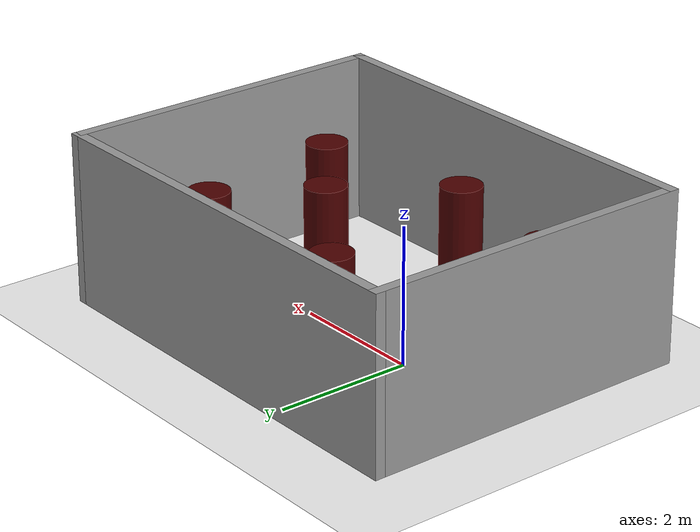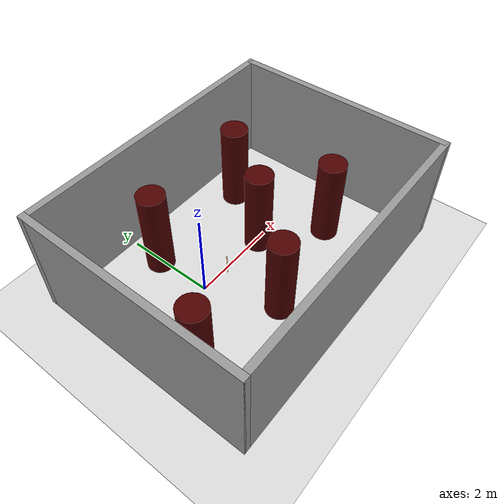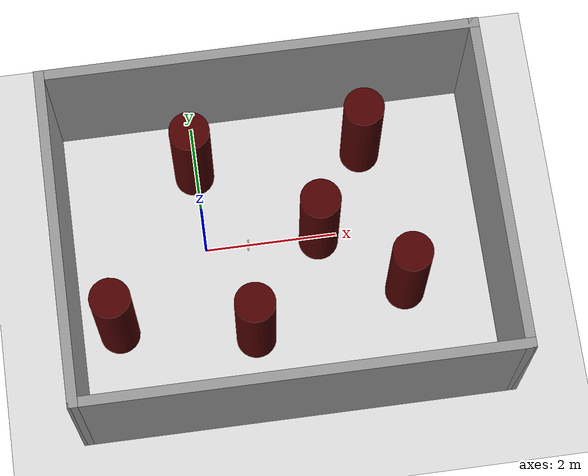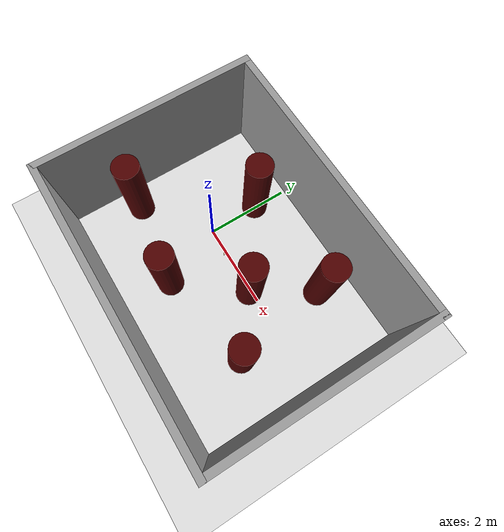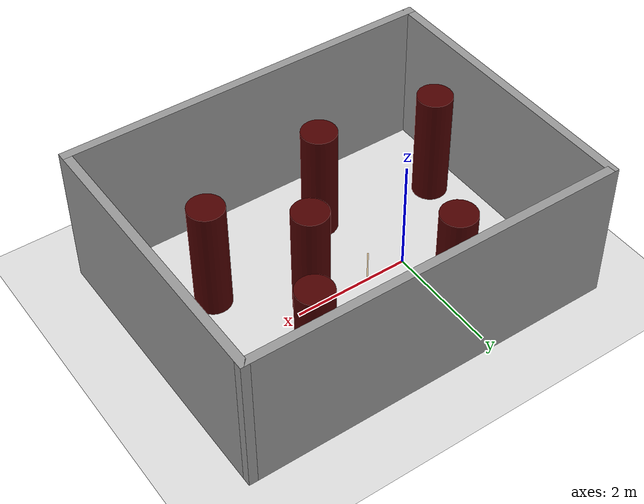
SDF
<sdf version="1.6">
 <world name="default">
  <physics name="default_physics" default="0" type="ode">
   <max_step_size>0.001</max_step_size>
   <real_time_factor>1</real_time_factor>
   <real_time_update_rate>0</real_time_update_rate>
  </physics>
  <light name="sun" type="directional">
   <pose>0 0 10 0 -0 0</pose>
   <diffuse>0.8 0.8 0.8 1</diffuse>
   <specular>0.2 0.2 0.2 1</specular>
   <attenuation>
    <range>1000</range>
    <constant>0.9</constant>
    <linear>0.01</linear>
    <quadratic>0.001</quadratic>
   </attenuation>
   <direction>0.5 0.1 -0.9</direction>
  </light>
  <scene><ambient>0.4 0.4 0.4 1</ambient><background>0.7 0.7 0.7 1</background><shadows>1</shadows></scene>
  <model name="ground_plane_0">
   <static>1</static>
   <link name="link">
    <collision name="collision">
     <geometry><plane><normal>0 0 1</normal><size>100 100</size></plane></geometry>
    </collision>
    <visual name="visual">
     <cast_shadows>0</cast_shadows>
     <geometry><plane><normal>0 0 1</normal><size>100 100</size></plane></geometry>
     <material>
      <script><uri>file://media/materials/scripts/gazebo.material</uri><name>Gazebo/Grey</name></script>
     </material>
    </visual>
    <velocity_decay><linear>0</linear><angular>0</angular></velocity_decay>
   </link>
   <pose>0.497681 0 0 0 -0 0</pose>
  </model>
  <gravity>0 0 -9.8</gravity>
  <magnetic_field>6e-06 2.3e-05 -4.2e-05</magnetic_field>
  <atmosphere type="adiabatic"/>
  <spherical_coordinates>
   <surface_model>EARTH_WGS84</surface_model>
   <latitude_deg>0</latitude_deg>
   <longitude_deg>0</longitude_deg>
   <elevation>0</elevation>
   <heading_deg>0</heading_deg>
  </spherical_coordinates>
  <model name="TargetMark5">
   <link name="link_0">
    <inertial>
     <mass>1</mass>
     <inertia><ixx>0.145833</ixx><ixy>0</ixy><ixz>0</ixz><iyy>0.145833</iyy><iyz>0</iyz><izz>0.125</izz></inertia>
    </inertial>
    <gravity>0</gravity>
    <visual name="visual">
     <geometry><cylinder><radius>0.0105</radius><length>1</length></cylinder></geometry>
     <material>
      <lighting>1</lighting>
      <script><uri>file://media/materials/scripts/gazebo.material</uri><name>Gazebo/Grey</name></script>
      <shader type="pixel"><normal_map>__default__</normal_map></shader>
      <ambient>1 0.6 0 1</ambient>
      <diffuse>1 0.6 0 1</diffuse>
      <specular>1 0.6 0 1</specular>
      <emissive>1 0.6 0 1</emissive>
     </material>
     <transparency>0.6</transparency>
    </visual>
    <collision name="collision">
     <geometry><cylinder><radius>1e-06</radius><length>0.01</length></cylinder></geometry>
     <surface>
      <friction>
       <ode><mu>1</mu><mu2>1</mu2><fdir1>0 0 0</fdir1><slip1>0</slip1><slip2>0</slip2></ode>
       <torsional>
        <coefficient>1</coefficient>
        <patch_radius>0</patch_radius>
        <surface_radius>0</surface_radius>
        <use_patch_radius>1</use_patch_radius>
        <ode><slip>0</slip></ode>
       </torsional>
      </friction>
      <bounce><restitution_coefficient>0</restitution_coefficient><threshold>1e+06</threshold></bounce>
      <contact>
       <collide_without_contact>0</collide_without_contact>
       <collide_without_contact_bitmask>1</collide_without_contact_bitmask>
       <collide_bitmask>1</collide_bitmask>
       <ode>
        <soft_cfm>0</soft_cfm>
        <soft_erp>0.2</soft_erp>
        <kp>1e+13</kp>
        <kd>1</kd>
        <max_vel>0.01</max_vel>
        <min_depth>0</min_depth>
       </ode>
       <bullet>
        <split_impulse>1</split_impulse>
        <split_impulse_penetration_threshold>-0.01</split_impulse_penetration_threshold>
        <soft_cfm>0</soft_cfm>
        <soft_erp>0.2</soft_erp>
        <kp>1e+13</kp>
        <kd>1</kd>
       </bullet>
      </contact>
     </surface>
    </collision>
   </link>
   <static>0</static>
   <pose>0.64544 -0.071407 0 0 -0 0</pose>
  </model>
  <model name="mario_walls">
   <pose>1.09544 -0.271407 0 0 -0 0</pose>
   <link name="Wall_11">
    <collision name="Wall_11_Collision">
     <geometry><box><size>5 0.15 2.5</size></box></geometry>
     <pose>0 0 1.25 0 -0 0</pose>
    </collision>
    <visual name="Wall_11_Visual">
     <pose>0 0 1.25 0 -0 0</pose>
     <geometry><box><size>5 0.15 2.5</size></box></geometry>
     <material>
      <script><uri>file://media/materials/scripts/gazebo.material</uri><name>Gazebo/Grey</name></script>
      <ambient>1 1 1 1</ambient>
     </material>
    </visual>
    <pose>-3.175 0 0 0 0 -1.5708</pose>
   </link>
   <link name="Wall_12">
    <collision name="Wall_12_Collision">
     <geometry><box><size>6.5 0.15 2.5</size></box></geometry>
     <pose>0 0 1.25 0 -0 0</pose>
    </collision>
    <visual name="Wall_12_Visual">
     <pose>0 0 1.25 0 -0 0</pose>
     <geometry><box><size>6.5 0.15 2.5</size></box></geometry>
     <material>
      <script><uri>file://media/materials/scripts/gazebo.material</uri><name>Gazebo/Grey</name></script>
      <ambient>1 1 1 1</ambient>
     </material>
    </visual>
    <pose>0 -2.425 0 0 -0 0</pose>
   </link>
   <link name="Wall_13">
    <collision name="Wall_13_Collision">
     <geometry><box><size>5 0.15 2.5</size></box></geometry>
     <pose>0 0 1.25 0 -0 0</pose>
    </collision>
    <visual name="Wall_13_Visual">
     <pose>0 0 1.25 0 -0 0</pose>
     <geometry><box><size>5 0.15 2.5</size></box></geometry>
     <material>
      <script><uri>file://media/materials/scripts/gazebo.material</uri><name>Gazebo/Grey</name></script>
      <ambient>1 1 1 1</ambient>
     </material>
    </visual>
    <pose>3.175 0 0 0 -0 1.5708</pose>
   </link>
   <link name="Wall_14">
    <collision name="Wall_14_Collision">
     <geometry><box><size>6.5 0.15 2.5</size></box></geometry>
     <pose>0 0 1.25 0 -0 0</pose>
    </collision>
    <visual name="Wall_14_Visual">
     <pose>0 0 1.25 0 -0 0</pose>
     <geometry><box><size>6.5 0.15 2.5</size></box></geometry>
     <material>
      <script><uri>file://media/materials/scripts/gazebo.material</uri><name>Gazebo/Grey</name></script>
      <ambient>1 1 1 1</ambient>
     </material>
    </visual>
    <pose>0 2.425 0 0 -0 3.14159</pose>
   </link>
   <static>1</static>
  </model>
  <model name="unit_cylinder_0_mario_2_0">
   <link name="link">
    <inertial>
     <mass>300</mass>
     <inertia><ixx>0.145833</ixx><ixy>0</ixy><ixz>0</ixz><iyy>0.145833</iyy><iyz>0</iyz><izz>0.125</izz></inertia>
    </inertial>
    <visual name="visual">
     <geometry><cylinder><radius>0.3</radius><length>2</length></cylinder></geometry>
     <material>
      <script><name>Gazebo/Grey</name><uri>file://media/materials/scripts/gazebo.material</uri></script>
      <ambient>0.3 0 0 1</ambient>
      <diffuse>0.7 0.7 0.7 1</diffuse>
      <specular>0.01 0.01 0.01 1</specular>
      <emissive>0 0 0 1</emissive>
      <shader type="vertex"><normal_map>__default__</normal_map></shader>
     </material>
    </visual>
    <collision name="collision">
     <geometry><cylinder><radius>0.3</radius><length>2</length></cylinder></geometry>
     <surface>
      <friction>
       <ode><mu>1</mu><mu2>1</mu2><fdir1>0 0 0</fdir1><slip1>0</slip1><slip2>0</slip2></ode>
       <torsional>
        <coefficient>1</coefficient>
        <patch_radius>0</patch_radius>
        <surface_radius>0</surface_radius>
        <use_patch_radius>1</use_patch_radius>
        <ode><slip>0</slip></ode>
       </torsional>
      </friction>
      <bounce><restitution_coefficient>0</restitution_coefficient><threshold>1e+06</threshold></bounce>
      <contact>
       <collide_without_contact>0</collide_without_contact>
       <collide_without_contact_bitmask>1</collide_without_contact_bitmask>
       <collide_bitmask>1</collide_bitmask>
       <ode>
        <soft_cfm>0</soft_cfm>
        <soft_erp>0.2</soft_erp>
        <kp>1e+13</kp>
        <kd>1</kd>
        <max_vel>0.01</max_vel>
        <min_depth>0</min_depth>
       </ode>
       <bullet>
        <split_impulse>1</split_impulse>
        <split_impulse_penetration_threshold>-0.01</split_impulse_penetration_threshold>
        <soft_cfm>0</soft_cfm>
        <soft_erp>0.2</soft_erp>
        <kp>1e+13</kp>
        <kd>1</kd>
       </bullet>
      </contact>
     </surface>
    </collision>
   </link>
   <static>0</static>
   <pose>1.72484 -0.06409 0.999999 1e-05 1.4e-05 -0.012077</pose>
  </model>
  <model name="unit_cylinder_0_mario_2_0_clone">
   <link name="link">
    <inertial>
     <mass>300</mass>
     <inertia><ixx>0.145833</ixx><ixy>0</ixy><ixz>0</ixz><iyy>0.145833</iyy><iyz>0</iyz><izz>0.125</izz></inertia>
    </inertial>
    <visual name="visual">
     <geometry><cylinder><radius>0.3</radius><length>2</length></cylinder></geometry>
     <material>
      <script><name>Gazebo/Grey</name><uri>file://media/materials/scripts/gazebo.material</uri></script>
      <ambient>0.3 0 0 1</ambient>
      <diffuse>0.7 0.7 0.7 1</diffuse>
      <specular>0.01 0.01 0.01 1</specular>
      <emissive>0 0 0 1</emissive>
      <shader type="vertex"><normal_map>__default__</normal_map></shader>
     </material>
    </visual>
    <collision name="collision">
     <geometry><cylinder><radius>0.3</radius><length>2</length></cylinder></geometry>
     <surface>
      <friction>
       <ode><mu>1</mu><mu2>1</mu2><fdir1>0 0 0</fdir1><slip1>0</slip1><slip2>0</slip2></ode>
       <torsional>
        <coefficient>1</coefficient>
        <patch_radius>0</patch_radius>
        <surface_radius>0</surface_radius>
        <use_patch_radius>1</use_patch_radius>
        <ode><slip>0</slip></ode>
       </torsional>
      </friction>
      <bounce><restitution_coefficient>0</restitution_coefficient><threshold>1e+06</threshold></bounce>
      <contact>
       <collide_without_contact>0</collide_without_contact>
       <collide_without_contact_bitmask>1</collide_without_contact_bitmask>
       <collide_bitmask>1</collide_bitmask>
       <ode>
        <soft_cfm>0</soft_cfm>
        <soft_erp>0.2</soft_erp>
        <kp>1e+13</kp>
        <kd>1</kd>
        <max_vel>0.01</max_vel>
        <min_depth>0</min_depth>
       </ode>
       <bullet>
        <split_impulse>1</split_impulse>
        <split_impulse_penetration_threshold>-0.01</split_impulse_penetration_threshold>
        <soft_cfm>0</soft_cfm>
        <soft_erp>0.2</soft_erp>
        <kp>1e+13</kp>
        <kd>1</kd>
       </bullet>
      </contact>
     </surface>
    </collision>
   </link>
   <static>0</static>
   <pose>0.58802 -1.47747 0.999999 1e-05 1.4e-05 -0.012077</pose>
  </model>
  <model name="unit_cylinder_0_mario_2_0_clone_0">
   <link name="link">
    <inertial>
     <mass>300</mass>
     <inertia><ixx>0.145833</ixx><ixy>0</ixy><ixz>0</ixz><iyy>0.145833</iyy><iyz>0</iyz><izz>0.125</izz></inertia>
    </inertial>
    <visual name="visual">
     <geometry><cylinder><radius>0.3</radius><length>2</length></cylinder></geometry>
     <material>
      <script><name>Gazebo/Grey</name><uri>file://media/materials/scripts/gazebo.material</uri></script>
      <ambient>0.3 0 0 1</ambient>
      <diffuse>0.7 0.7 0.7 1</diffuse>
      <specular>0.01 0.01 0.01 1</specular>
      <emissive>0 0 0 1</emissive>
      <shader type="vertex"><normal_map>__default__</normal_map></shader>
     </material>
    </visual>
    <collision name="collision">
     <geometry><cylinder><radius>0.3</radius><length>2</length></cylinder></geometry>
     <surface>
      <friction>
       <ode><mu>1</mu><mu2>1</mu2><fdir1>0 0 0</fdir1><slip1>0</slip1><slip2>0</slip2></ode>
       <torsional>
        <coefficient>1</coefficient>
        <patch_radius>0</patch_radius>
        <surface_radius>0</surface_radius>
        <use_patch_radius>1</use_patch_radius>
        <ode><slip>0</slip></ode>
       </torsional>
      </friction>
      <bounce><restitution_coefficient>0</restitution_coefficient><threshold>1e+06</threshold></bounce>
      <contact>
       <collide_without_contact>0</collide_without_contact>
       <collide_without_contact_bitmask>1</collide_without_contact_bitmask>
       <collide_bitmask>1</collide_bitmask>
       <ode>
        <soft_cfm>0</soft_cfm>
        <soft_erp>0.2</soft_erp>
        <kp>1e+13</kp>
        <kd>1</kd>
        <max_vel>0.01</max_vel>
        <min_depth>0</min_depth>
       </ode>
       <bullet>
        <split_impulse>1</split_impulse>
        <split_impulse_penetration_threshold>-0.01</split_impulse_penetration_threshold>
        <soft_cfm>0</soft_cfm>
        <soft_erp>0.2</soft_erp>
        <kp>1e+13</kp>
        <kd>1</kd>
       </bullet>
      </contact>
     </surface>
    </collision>
   </link>
   <static>0</static>
   <pose>2.92102 -1.02492 0.999999 1e-05 1.4e-05 -0.012077</pose>
  </model>
  <model name="unit_cylinder_0_mario_2_0_clone_1">
   <link name="link">
    <inertial>
     <mass>300</mass>
     <inertia><ixx>0.145833</ixx><ixy>0</ixy><ixz>0</ixz><iyy>0.145833</iyy><iyz>0</iyz><izz>0.125</izz></inertia>
    </inertial>
    <visual name="visual">
     <geometry><cylinder><radius>0.3</radius><length>2</length></cylinder></geometry>
     <material>
      <script><name>Gazebo/Grey</name><uri>file://media/materials/scripts/gazebo.material</uri></script>
      <ambient>0.3 0 0 1</ambient>
      <diffuse>0.7 0.7 0.7 1</diffuse>
      <specular>0.01 0.01 0.01 1</specular>
      <emissive>0 0 0 1</emissive>
      <shader type="vertex"><normal_map>__default__</normal_map></shader>
     </material>
    </visual>
    <collision name="collision">
     <geometry><cylinder><radius>0.3</radius><length>2</length></cylinder></geometry>
     <surface>
      <friction>
       <ode><mu>1</mu><mu2>1</mu2><fdir1>0 0 0</fdir1><slip1>0</slip1><slip2>0</slip2></ode>
       <torsional>
        <coefficient>1</coefficient>
        <patch_radius>0</patch_radius>
        <surface_radius>0</surface_radius>
        <use_patch_radius>1</use_patch_radius>
        <ode><slip>0</slip></ode>
       </torsional>
      </friction>
      <bounce><restitution_coefficient>0</restitution_coefficient><threshold>1e+06</threshold></bounce>
      <contact>
       <collide_without_contact>0</collide_without_contact>
       <collide_without_contact_bitmask>1</collide_without_contact_bitmask>
       <collide_bitmask>1</collide_bitmask>
       <ode>
        <soft_cfm>0</soft_cfm>
        <soft_erp>0.2</soft_erp>
        <kp>1e+13</kp>
        <kd>1</kd>
        <max_vel>0.01</max_vel>
        <min_depth>0</min_depth>
       </ode>
       <bullet>
        <split_impulse>1</split_impulse>
        <split_impulse_penetration_threshold>-0.01</split_impulse_penetration_threshold>
        <soft_cfm>0</soft_cfm>
        <soft_erp>0.2</soft_erp>
        <kp>1e+13</kp>
        <kd>1</kd>
       </bullet>
      </contact>
     </surface>
    </collision>
   </link>
   <static>0</static>
   <pose>2.55106 1.25811 0.999999 1e-05 1.4e-05 -0.012077</pose>
  </model>
  <model name="unit_cylinder_0_mario_2_0_clone_2">
   <link name="link">
    <inertial>
     <mass>300</mass>
     <inertia><ixx>0.145833</ixx><ixy>0</ixy><ixz>0</ixz><iyy>0.145833</iyy><iyz>0</iyz><izz>0.125</izz></inertia>
    </inertial>
    <visual name="visual">
     <geometry><cylinder><radius>0.3</radius><length>2</length></cylinder></geometry>
     <material>
      <script><name>Gazebo/Grey</name><uri>file://media/materials/scripts/gazebo.material</uri></script>
      <ambient>0.3 0 0 1</ambient>
      <diffuse>0.7 0.7 0.7 1</diffuse>
      <specular>0.01 0.01 0.01 1</specular>
      <emissive>0 0 0 1</emissive>
      <shader type="vertex"><normal_map>__default__</normal_map></shader>
     </material>
    </visual>
    <collision name="collision">
     <geometry><cylinder><radius>0.3</radius><length>2</length></cylinder></geometry>
     <surface>
      <friction>
       <ode><mu>1</mu><mu2>1</mu2><fdir1>0 0 0</fdir1><slip1>0</slip1><slip2>0</slip2></ode>
       <torsional>
        <coefficient>1</coefficient>
        <patch_radius>0</patch_radius>
        <surface_radius>0</surface_radius>
        <use_patch_radius>1</use_patch_radius>
        <ode><slip>0</slip></ode>
       </torsional>
      </friction>
      <bounce><restitution_coefficient>0</restitution_coefficient><threshold>1e+06</threshold></bounce>
      <contact>
       <collide_without_contact>0</collide_without_contact>
       <collide_without_contact_bitmask>1</collide_without_contact_bitmask>
       <collide_bitmask>1</collide_bitmask>
       <ode>
        <soft_cfm>0</soft_cfm>
        <soft_erp>0.2</soft_erp>
        <kp>1e+13</kp>
        <kd>1</kd>
        <max_vel>0.01</max_vel>
        <min_depth>0</min_depth>
       </ode>
       <bullet>
        <split_impulse>1</split_impulse>
        <split_impulse_penetration_threshold>-0.01</split_impulse_penetration_threshold>
        <soft_cfm>0</soft_cfm>
        <soft_erp>0.2</soft_erp>
        <kp>1e+13</kp>
        <kd>1</kd>
       </bullet>
      </contact>
     </surface>
    </collision>
   </link>
   <static>0</static>
   <pose>-0.032457 1.21675 0.999999 1e-05 1.4e-05 -0.012077</pose>
  </model>
  <model name="unit_cylinder_0_mario_2_0_clone_3">
   <link name="link">
    <inertial>
     <mass>300</mass>
     <inertia><ixx>0.145833</ixx><ixy>0</ixy><ixz>0</ixz><iyy>0.145833</iyy><iyz>0</iyz><izz>0.125</izz></inertia>
    </inertial>
    <visual name="visual">
     <geometry><cylinder><radius>0.3</radius><length>2</length></cylinder></geometry>
     <material>
      <script><name>Gazebo/Grey</name><uri>file://media/materials/scripts/gazebo.material</uri></script>
      <ambient>0.3 0 0 1</ambient>
      <diffuse>0.7 0.7 0.7 1</diffuse>
      <specular>0.01 0.01 0.01 1</specular>
      <emissive>0 0 0 1</emissive>
      <shader type="vertex"><normal_map>__default__</normal_map></shader>
     </material>
    </visual>
    <collision name="collision">
     <geometry><cylinder><radius>0.3</radius><length>2</length></cylinder></geometry>
     <surface>
      <friction>
       <ode><mu>1</mu><mu2>1</mu2><fdir1>0 0 0</fdir1><slip1>0</slip1><slip2>0</slip2></ode>
       <torsional>
        <coefficient>1</coefficient>
        <patch_radius>0</patch_radius>
        <surface_radius>0</surface_radius>
        <use_patch_radius>1</use_patch_radius>
        <ode><slip>0</slip></ode>
       </torsional>
      </friction>
      <bounce><restitution_coefficient>0</restitution_coefficient><threshold>1e+06</threshold></bounce>
      <contact>
       <collide_without_contact>0</collide_without_contact>
       <collide_without_contact_bitmask>1</collide_without_contact_bitmask>
       <collide_bitmask>1</collide_bitmask>
       <ode>
        <soft_cfm>0</soft_cfm>
        <soft_erp>0.2</soft_erp>
        <kp>1e+13</kp>
        <kd>1</kd>
        <max_vel>0.01</max_vel>
        <min_depth>0</min_depth>
       </ode>
       <bullet>
        <split_impulse>1</split_impulse>
        <split_impulse_penetration_threshold>-0.01</split_impulse_penetration_threshold>
        <soft_cfm>0</soft_cfm>
        <soft_erp>0.2</soft_erp>
        <kp>1e+13</kp>
        <kd>1</kd>
       </bullet>
      </contact>
     </surface>
    </collision>
   </link>
   <static>0</static>
   <pose>-1.44446 -1.14417 0.999999 1e-05 1.4e-05 -0.012077</pose>
  </model>
 </world>
</sdf>
